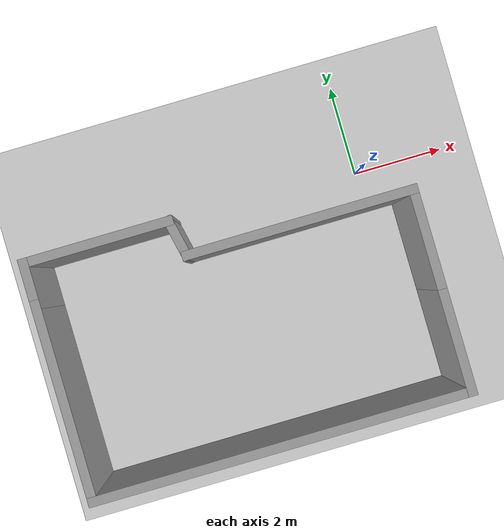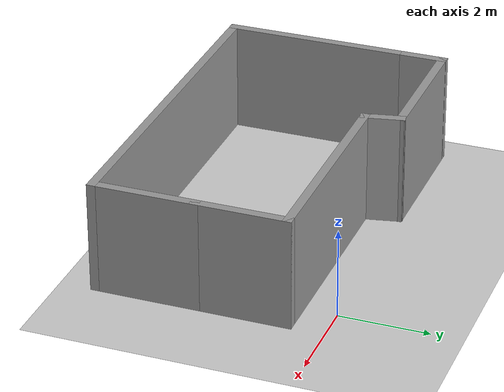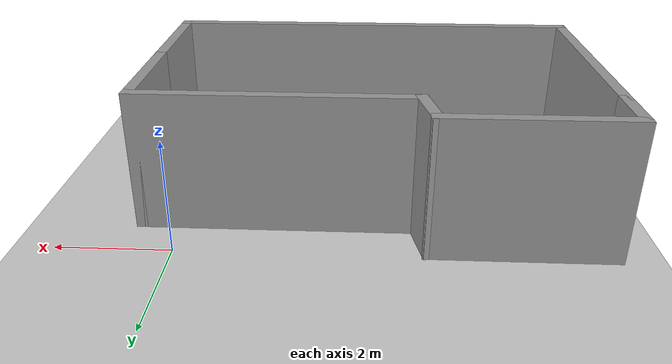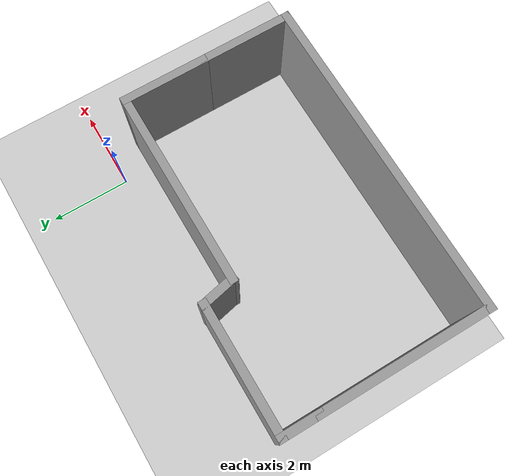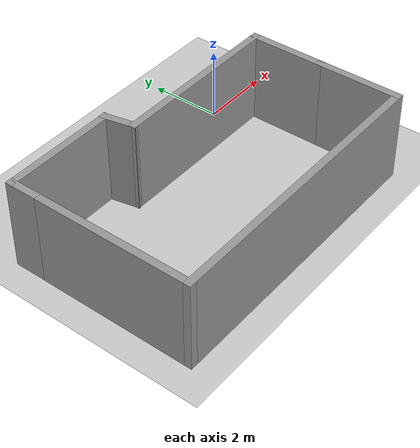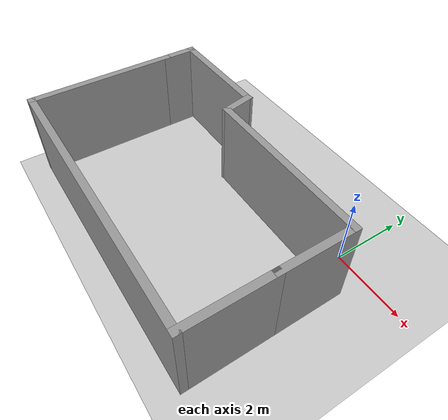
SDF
<?xml version='1.0'?>
<sdf version='1.4'>
	<world name="default">
		<physics type="ode">
      <gravity>0 0 -9.81</gravity>
      <ode>
        <solver>
          <type>quick</type>
          <iters>20</iters>
          <sor>1.0</sor>
        </solver>
        <constraints>
          <cfm>0.0</cfm>
          <erp>0.2</erp>
          <contact_max_correcting_vel>100.0</contact_max_correcting_vel>
          <contact_surface_layer>0.0</contact_surface_layer>
        </constraints>
      </ode>
      <real_time_update_rate>1000</real_time_update_rate>
      <max_step_size>0.001</max_step_size>
    </physics>
    <light type="directional" name="light1">
      <cast_shadows>true</cast_shadows>
      <pose>-2 0 4 0 0 0</pose>
      <diffuse>1.0 1.0 1.0 1</diffuse>
      <specular>0.1 0.1 0.1 1</specular>
      <attenuation>
        <range>20</range>
        <constant>0.9</constant>
        <linear>0.01</linear>
        <quadratic>0.001</quadratic>
      </attenuation>
      <direction>0.2 0.0 -1.0</direction>
    </light>
        <include>
      <uri>model://ground_plane</uri>
    </include>
  <model name='test'>
    <link name='Wall_0'>
      <collision name='Wall_0_Collision'>
        <geometry>
          <box>
            <size>4.97 0.2 2.5</size>
          </box>
        </geometry>
        <pose>0 0 1.25 0 -0 0</pose>
      </collision>
      <visual name='Wall_0_Visual'>
        <pose>0 0 1.25 0 -0 0</pose>
        <geometry>
          <box>
            <size>4.97 0.2 2.5</size>
          </box>
        </geometry>
        <material>
          <script>
            <uri>file://media/materials/scripts/gazebo.material</uri>
            <name>Gazebo/Grey</name>
          </script>
        </material>
      </visual>
      <velocity_decay>
        <linear>0</linear>
        <angular>0</angular>
      </velocity_decay>
      <pose>-1.675 -0.81 0 0 -0 0</pose>
    </link>
    <link name='Wall_1'>
      <collision name='Wall_1_Collision'>
        <geometry>
          <box>
            <size>2.2 0.2 2.5</size>
          </box>
        </geometry>
        <pose>0 0 1.25 0 -0 0</pose>
      </collision>
      <visual name='Wall_1_Visual'>
        <pose>0 0 1.25 0 -0 0</pose>
        <geometry>
          <box>
            <size>2.2 0.2 2.5</size>
          </box>
        </geometry>
        <material>
          <script>
            <uri>file://media/materials/scripts/gazebo.material</uri>
            <name>Gazebo/Grey</name>
          </script>
        </material>
      </visual>
      <velocity_decay>
        <linear>0</linear>
        <angular>0</angular>
      </velocity_decay>
      <pose>0.71 -1.81 0 0 0 -1.5708</pose>
    </link>
    <link name='Wall_2'>
      <collision name='Wall_2_Collision'>
        <geometry>
          <box>
            <size>2.4502 0.2 2.5</size>
          </box>
        </geometry>
        <pose>0 0 1.25 0 -0 0</pose>
      </collision>
      <visual name='Wall_2_Visual'>
        <pose>0 0 1.25 0 -0 0</pose>
        <geometry>
          <box>
            <size>2.4502 0.2 2.5</size>
          </box>
        </geometry>
        <material>
          <script>
            <uri>file://media/materials/scripts/gazebo.material</uri>
            <name>Gazebo/Grey</name>
          </script>
        </material>
      </visual>
      <velocity_decay>
        <linear>0</linear>
        <angular>0</angular>
      </velocity_decay>
      <pose>0.71 -3.9351 0 0 0 -1.5708</pose>
    </link>
    <link name='Wall_3'>
      <collision name='Wall_3_Collision'>
        <geometry>
          <box>
            <size>8.18515 0.2 2.5</size>
          </box>
        </geometry>
        <pose>0 0 1.25 0 -0 0</pose>
      </collision>
      <visual name='Wall_3_Visual'>
        <pose>0 0 1.25 0 -0 0</pose>
        <geometry>
          <box>
            <size>8.18515 0.2 2.5</size>
          </box>
        </geometry>
        <material>
          <script>
            <uri>file://media/materials/scripts/gazebo.material</uri>
            <name>Gazebo/Grey</name>
          </script>
        </material>
      </visual>
      <velocity_decay>
        <linear>0</linear>
        <angular>0</angular>
      </velocity_decay>
      <pose>-3.28257 -5.0602 0 0 -0 3.14159</pose>
    </link>
    <link name='Wall_4'>
      <collision name='Wall_4_Collision'>
        <geometry>
          <box>
            <size>4.34038 0.2 2.5</size>
          </box>
        </geometry>
        <pose>0 0 1.25 0 -0 0</pose>
      </collision>
      <visual name='Wall_4_Visual'>
        <pose>0 0 1.25 0 -0 0</pose>
        <geometry>
          <box>
            <size>4.34038 0.2 2.5</size>
          </box>
        </geometry>
        <material>
          <script>
            <uri>file://media/materials/scripts/gazebo.material</uri>
            <name>Gazebo/Grey</name>
          </script>
        </material>
      </visual>
      <velocity_decay>
        <linear>0</linear>
        <angular>0</angular>
      </velocity_decay>
      <pose>-7.27515 -2.99002 0 0 -0 1.5708</pose>
    </link>
    <link name='Wall_5'>
      <collision name='Wall_5_Collision'>
        <geometry>
          <box>
            <size>1.07896 0.2 2.5</size>
          </box>
        </geometry>
        <pose>0 0 1.25 0 -0 0</pose>
      </collision>
      <visual name='Wall_5_Visual'>
        <pose>0 0 1.25 0 -0 0</pose>
        <geometry>
          <box>
            <size>1.07896 0.2 2.5</size>
          </box>
        </geometry>
        <material>
          <script>
            <uri>file://media/materials/scripts/gazebo.material</uri>
            <name>Gazebo/Grey</name>
          </script>
        </material>
      </visual>
      <velocity_decay>
        <linear>0</linear>
        <angular>0</angular>
      </velocity_decay>
      <pose>-7.27515 -0.480345 0 0 -0 1.5708</pose>
    </link>
    <link name='Wall_6'>
      <collision name='Wall_6_Collision'>
        <geometry>
          <box>
            <size>3.25324 0.2 2.5</size>
          </box>
        </geometry>
        <pose>0 0 1.25 0 -0 0</pose>
      </collision>
      <visual name='Wall_6_Visual'>
        <pose>0 0 1.25 0 -0 0</pose>
        <geometry>
          <box>
            <size>3.25324 0.2 2.5</size>
          </box>
        </geometry>
        <material>
          <script>
            <uri>file://media/materials/scripts/gazebo.material</uri>
            <name>Gazebo/Grey</name>
          </script>
        </material>
      </visual>
      <velocity_decay>
        <linear>0</linear>
        <angular>0</angular>
      </velocity_decay>
      <pose>-5.74853 -0.040864 0 0 -0 0</pose>
    </link>
    <link name='Wall_7'>
      <collision name='Wall_7_Collision'>
        <geometry>
          <box>
            <size>0.985993 0.2 2.5</size>
          </box>
        </geometry>
        <pose>0 0 1.25 0 -0 0</pose>
      </collision>
      <visual name='Wall_7_Visual'>
        <pose>0 0 1.25 0 -0 0</pose>
        <geometry>
          <box>
            <size>0.985993 0.2 2.5</size>
          </box>
        </geometry>
        <material>
          <script>
            <uri>file://media/materials/scripts/gazebo.material</uri>
            <name>Gazebo/Grey</name>
          </script>
        </material>
      </visual>
      <velocity_decay>
        <linear>0</linear>
        <angular>0</angular>
      </velocity_decay>
      <pose>-4.14095 -0.425432 0 0 0 -1.36332</pose>
    </link>
    <static>1</static>
  </model>
  </world>
</sdf>
